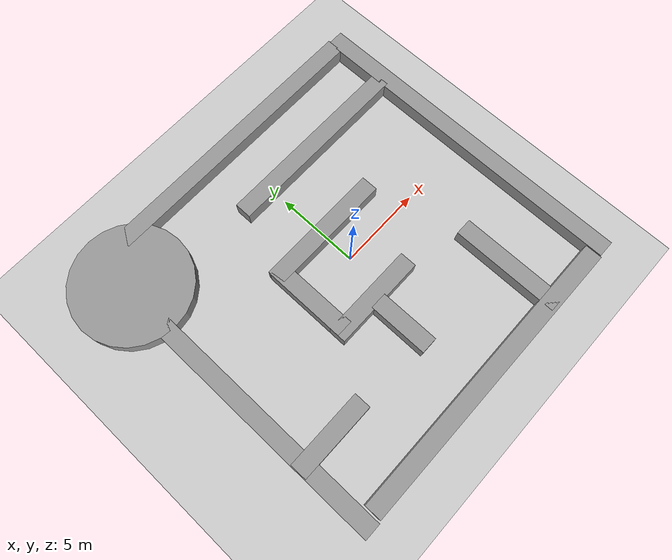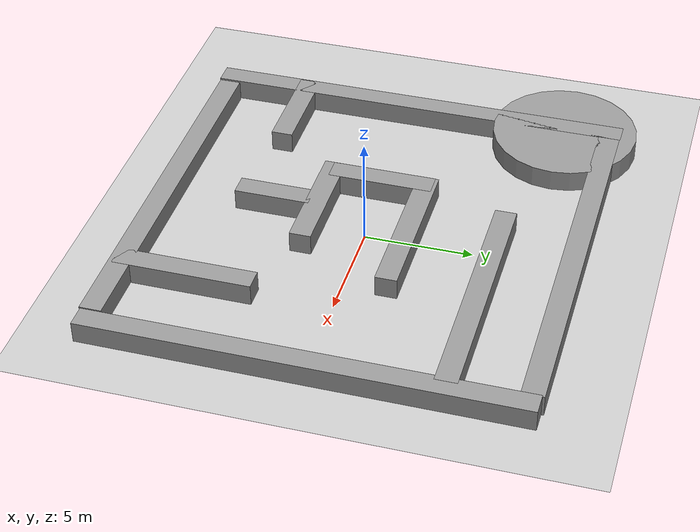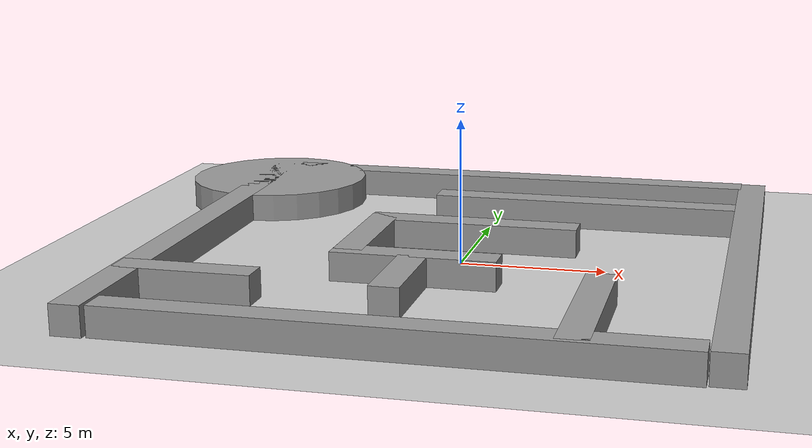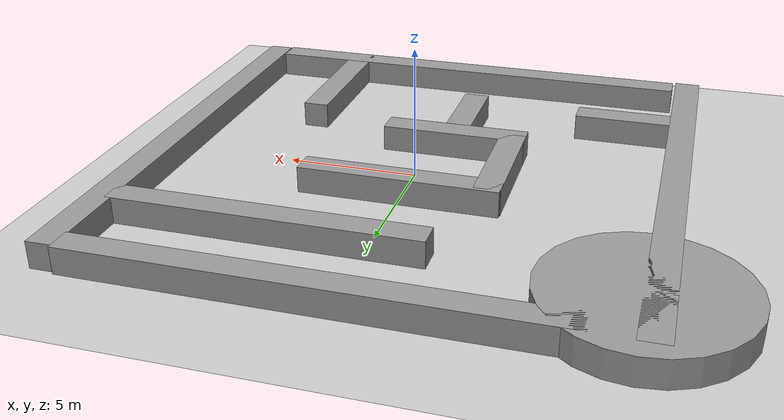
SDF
<sdf version="1.6">
 <world name="default">
  <light name="sun" type="directional">
   <pose>0 0 10 0 -0 0</pose>
   <diffuse>0.8 0.8 0.8 1</diffuse>
   <specular>0.1 0.1 0.1 1</specular>
   <attenuation>
    <range>1000</range>
    <constant>0.9</constant>
    <linear>0.01</linear>
    <quadratic>0.001</quadratic>
   </attenuation>
   <direction>-0.5 0.5 -1</direction>
  </light>
  <model name="ground_plane">
   <static>1</static>
   <link name="link">
    <collision name="collision">
     <geometry><plane><normal>0 0 1</normal><size>100 100</size></plane></geometry>
     <surface><friction><ode><mu>100</mu><mu2>50</mu2></ode></friction></surface>
    </collision>
    <visual name="visual">
     <cast_shadows>0</cast_shadows>
     <geometry><plane><normal>0 0 1</normal><size>100 100</size></plane></geometry>
     <material>
      <script><uri>file://media/materials/scripts/gazebo.material</uri><name>Gazebo/Grey</name></script>
     </material>
    </visual>
   </link>
  </model>
  <gravity>0 0 -9.8</gravity>
  <magnetic_field>6e-06 2.3e-05 -4.2e-05</magnetic_field>
  <atmosphere type="adiabatic"/>
  <physics name="default_physics" default="0" type="ode">
   <max_step_size>0.001</max_step_size>
   <real_time_factor>1</real_time_factor>
   <real_time_update_rate>1000</real_time_update_rate>
  </physics>
  <scene><ambient>0.4 0.4 0.4 1</ambient><background>0.7 0.7 0.7 1</background><shadows>1</shadows></scene>
  <spherical_coordinates>
   <surface_model>EARTH_WGS84</surface_model>
   <latitude_deg>0</latitude_deg>
   <longitude_deg>0</longitude_deg>
   <elevation>0</elevation>
   <heading_deg>0</heading_deg>
  </spherical_coordinates>
  <model name="mapa1">
   <link name="link_0">
    <pose>-8.44652 0.33221 0 0 -0 0</pose>
    <inertial>
     <mass>20.1095</mass>
     <inertia><ixx>679.354</ixx><ixy>0</ixy><ixz>0</ixz><iyy>3.35159</iyy><iyz>0</iyz><izz>679.354</izz></inertia>
    </inertial>
    <visual name="visual">
     <geometry><box><size>1 20.1095 1</size></box></geometry>
     <material>
      <lighting>1</lighting>
      <script><uri>file://media/materials/scripts/gazebo.material</uri><name>Gazebo/Grey</name></script>
      <ambient>0.3 0.3 0.3 1</ambient>
      <diffuse>0.7 0.7 0.7 1</diffuse>
      <specular>0.01 0.01 0.01 1</specular>
      <emissive>0 0 0 1</emissive>
     </material>
    </visual>
    <collision name="collision">
     <geometry><box><size>1 20.1095 1</size></box></geometry>
     <surface>
      <friction>
       <ode><mu>1</mu><mu2>1</mu2><fdir1>0 0 0</fdir1><slip1>0</slip1><slip2>0</slip2></ode>
       <torsional>
        <coefficient>1</coefficient>
        <patch_radius>0</patch_radius>
        <surface_radius>0</surface_radius>
        <use_patch_radius>1</use_patch_radius>
        <ode><slip>0</slip></ode>
       </torsional>
      </friction>
      <bounce><restitution_coefficient>0</restitution_coefficient><threshold>1e+06</threshold></bounce>
      <contact>
       <collide_without_contact>0</collide_without_contact>
       <collide_without_contact_bitmask>1</collide_without_contact_bitmask>
       <collide_bitmask>1</collide_bitmask>
       <ode>
        <soft_cfm>0</soft_cfm>
        <soft_erp>0.2</soft_erp>
        <kp>1e+13</kp>
        <kd>1</kd>
        <max_vel>0.01</max_vel>
        <min_depth>0</min_depth>
       </ode>
       <bullet>
        <split_impulse>1</split_impulse>
        <split_impulse_penetration_threshold>-0.01</split_impulse_penetration_threshold>
        <soft_cfm>0</soft_cfm>
        <soft_erp>0.2</soft_erp>
        <kp>1e+13</kp>
        <kd>1</kd>
       </bullet>
      </contact>
     </surface>
    </collision>
   </link>
   <link name="link_1">
    <pose>10.5982 0.33221 0 0 -0 0</pose>
    <inertial>
     <mass>19.8159</mass>
     <inertia><ixx>650.081</ixx><ixy>0</ixy><ixz>0</ixz><iyy>3.30266</iyy><iyz>0</iyz><izz>650.081</izz></inertia>
    </inertial>
    <visual name="visual">
     <geometry><box><size>1 19.8159 1</size></box></geometry>
     <material>
      <lighting>1</lighting>
      <script><uri>file://media/materials/scripts/gazebo.material</uri><name>Gazebo/Grey</name></script>
      <ambient>0.3 0.3 0.3 1</ambient>
      <diffuse>0.7 0.7 0.7 1</diffuse>
      <specular>0.01 0.01 0.01 1</specular>
      <emissive>0 0 0 1</emissive>
     </material>
    </visual>
    <collision name="collision">
     <geometry><box><size>1 19.8159 1</size></box></geometry>
     <surface>
      <friction>
       <ode><mu>1</mu><mu2>1</mu2><fdir1>0 0 0</fdir1><slip1>0</slip1><slip2>0</slip2></ode>
       <torsional>
        <coefficient>1</coefficient>
        <patch_radius>0</patch_radius>
        <surface_radius>0</surface_radius>
        <use_patch_radius>1</use_patch_radius>
        <ode><slip>0</slip></ode>
       </torsional>
      </friction>
      <bounce><restitution_coefficient>0</restitution_coefficient><threshold>1e+06</threshold></bounce>
      <contact>
       <collide_without_contact>0</collide_without_contact>
       <collide_without_contact_bitmask>1</collide_without_contact_bitmask>
       <collide_bitmask>1</collide_bitmask>
       <ode>
        <soft_cfm>0</soft_cfm>
        <soft_erp>0.2</soft_erp>
        <kp>1e+13</kp>
        <kd>1</kd>
        <max_vel>0.01</max_vel>
        <min_depth>0</min_depth>
       </ode>
       <bullet>
        <split_impulse>1</split_impulse>
        <split_impulse_penetration_threshold>-0.01</split_impulse_penetration_threshold>
        <soft_cfm>0</soft_cfm>
        <soft_erp>0.2</soft_erp>
        <kp>1e+13</kp>
        <kd>1</kd>
       </bullet>
      </contact>
     </surface>
    </collision>
   </link>
   <link name="link_10">
    <pose>6.39777 -6.29774 0 0 -0 0</pose>
    <inertial>
     <mass>6.36104</mass>
     <inertia><ixx>21.979</ixx><ixy>0</ixy><ixz>0</ixz><iyy>1.06018</iyy><iyz>0</iyz><izz>21.979</izz></inertia>
    </inertial>
    <visual name="visual">
     <geometry><box><size>1 6.36104 1</size></box></geometry>
     <material>
      <lighting>1</lighting>
      <script><uri>file://media/materials/scripts/gazebo.material</uri><name>Gazebo/Grey</name></script>
      <ambient>0.3 0.3 0.3 1</ambient>
      <diffuse>0.7 0.7 0.7 1</diffuse>
      <specular>0.01 0.01 0.01 1</specular>
      <emissive>0 0 0 1</emissive>
     </material>
    </visual>
    <collision name="collision">
     <geometry><box><size>1 6.36104 1</size></box></geometry>
     <surface>
      <friction>
       <ode><mu>1</mu><mu2>1</mu2><fdir1>0 0 0</fdir1><slip1>0</slip1><slip2>0</slip2></ode>
       <torsional>
        <coefficient>1</coefficient>
        <patch_radius>0</patch_radius>
        <surface_radius>0</surface_radius>
        <use_patch_radius>1</use_patch_radius>
        <ode><slip>0</slip></ode>
       </torsional>
      </friction>
      <bounce><restitution_coefficient>0</restitution_coefficient><threshold>1e+06</threshold></bounce>
      <contact>
       <collide_without_contact>0</collide_without_contact>
       <collide_without_contact_bitmask>1</collide_without_contact_bitmask>
       <collide_bitmask>1</collide_bitmask>
       <ode>
        <soft_cfm>0</soft_cfm>
        <soft_erp>0.2</soft_erp>
        <kp>1e+13</kp>
        <kd>1</kd>
        <max_vel>0.01</max_vel>
        <min_depth>0</min_depth>
       </ode>
       <bullet>
        <split_impulse>1</split_impulse>
        <split_impulse_penetration_threshold>-0.01</split_impulse_penetration_threshold>
        <soft_cfm>0</soft_cfm>
        <soft_erp>0.2</soft_erp>
        <kp>1e+13</kp>
        <kd>1</kd>
       </bullet>
      </contact>
     </surface>
    </collision>
   </link>
   <link name="link_11">
    <pose>-6.5653 -5.29878 0 0 -0 0</pose>
    <inertial>
     <mass>4.66575</mass>
     <inertia><ixx>0.777626</ixx><ixy>0</ixy><ixz>0</ixz><iyy>8.85295</iyy><iyz>0</iyz><izz>8.85295</izz></inertia>
    </inertial>
    <visual name="visual">
     <geometry><box><size>4.66574 1 1</size></box></geometry>
     <material>
      <lighting>1</lighting>
      <script><uri>file://media/materials/scripts/gazebo.material</uri><name>Gazebo/Grey</name></script>
      <ambient>0.3 0.3 0.3 1</ambient>
      <diffuse>0.7 0.7 0.7 1</diffuse>
      <specular>0.01 0.01 0.01 1</specular>
      <emissive>0 0 0 1</emissive>
     </material>
    </visual>
    <collision name="collision">
     <geometry><box><size>4.66574 1 1</size></box></geometry>
     <surface>
      <friction>
       <ode><mu>1</mu><mu2>1</mu2><fdir1>0 0 0</fdir1><slip1>0</slip1><slip2>0</slip2></ode>
       <torsional>
        <coefficient>1</coefficient>
        <patch_radius>0</patch_radius>
        <surface_radius>0</surface_radius>
        <use_patch_radius>1</use_patch_radius>
        <ode><slip>0</slip></ode>
       </torsional>
      </friction>
      <bounce><restitution_coefficient>0</restitution_coefficient><threshold>1e+06</threshold></bounce>
      <contact>
       <collide_without_contact>0</collide_without_contact>
       <collide_without_contact_bitmask>1</collide_without_contact_bitmask>
       <collide_bitmask>1</collide_bitmask>
       <ode>
        <soft_cfm>0</soft_cfm>
        <soft_erp>0.2</soft_erp>
        <kp>1e+13</kp>
        <kd>1</kd>
        <max_vel>0.01</max_vel>
        <min_depth>0</min_depth>
       </ode>
       <bullet>
        <split_impulse>1</split_impulse>
        <split_impulse_penetration_threshold>-0.01</split_impulse_penetration_threshold>
        <soft_cfm>0</soft_cfm>
        <soft_erp>0.2</soft_erp>
        <kp>1e+13</kp>
        <kd>1</kd>
       </bullet>
      </contact>
     </surface>
    </collision>
   </link>
   <link name="link_12">
    <pose>4.61857 6.33221 0 0 -0 0</pose>
    <inertial>
     <mass>11.441</mass>
     <inertia><ixx>1.90683</ixx><ixy>0</ixy><ixz>0</ixz><iyy>125.752</iyy><iyz>0</iyz><izz>125.752</izz></inertia>
    </inertial>
    <visual name="visual">
     <geometry><box><size>11.441 1 1</size></box></geometry>
     <material>
      <lighting>1</lighting>
      <script><uri>file://media/materials/scripts/gazebo.material</uri><name>Gazebo/Grey</name></script>
      <ambient>0.3 0.3 0.3 1</ambient>
      <diffuse>0.7 0.7 0.7 1</diffuse>
      <specular>0.01 0.01 0.01 1</specular>
      <emissive>0 0 0 1</emissive>
     </material>
    </visual>
    <collision name="collision">
     <geometry><box><size>11.441 1 1</size></box></geometry>
     <surface>
      <friction>
       <ode><mu>1</mu><mu2>1</mu2><fdir1>0 0 0</fdir1><slip1>0</slip1><slip2>0</slip2></ode>
       <torsional>
        <coefficient>1</coefficient>
        <patch_radius>0</patch_radius>
        <surface_radius>0</surface_radius>
        <use_patch_radius>1</use_patch_radius>
        <ode><slip>0</slip></ode>
       </torsional>
      </friction>
      <bounce><restitution_coefficient>0</restitution_coefficient><threshold>1e+06</threshold></bounce>
      <contact>
       <collide_without_contact>0</collide_without_contact>
       <collide_without_contact_bitmask>1</collide_without_contact_bitmask>
       <collide_bitmask>1</collide_bitmask>
       <ode>
        <soft_cfm>0</soft_cfm>
        <soft_erp>0.2</soft_erp>
        <kp>1e+13</kp>
        <kd>1</kd>
        <max_vel>0.01</max_vel>
        <min_depth>0</min_depth>
       </ode>
       <bullet>
        <split_impulse>1</split_impulse>
        <split_impulse_penetration_threshold>-0.01</split_impulse_penetration_threshold>
        <soft_cfm>0</soft_cfm>
        <soft_erp>0.2</soft_erp>
        <kp>1e+13</kp>
        <kd>1</kd>
       </bullet>
      </contact>
     </surface>
    </collision>
   </link>
   <link name="link_16">
    <pose>-8.04124 7.70684 0 0 -0 0</pose>
    <inertial>
     <mass>46.9712</mass>
     <inertia><ixx>141.808</ixx><ixy>0</ixy><ixz>0</ixz><iyy>141.808</iyy><iyz>0</iyz><izz>275.787</izz></inertia>
    </inertial>
    <visual name="visual">
     <geometry><cylinder><radius>3.42678</radius><length>1</length></cylinder></geometry>
     <material>
      <lighting>1</lighting>
      <script><uri>file://media/materials/scripts/gazebo.material</uri><name>Gazebo/Grey</name></script>
      <ambient>0.3 0.3 0.3 1</ambient>
      <diffuse>0.7 0.7 0.7 1</diffuse>
      <specular>0.01 0.01 0.01 1</specular>
      <emissive>0 0 0 1</emissive>
     </material>
    </visual>
    <collision name="collision">
     <geometry><cylinder><radius>3.42678</radius><length>1</length></cylinder></geometry>
     <surface>
      <friction>
       <ode><mu>1</mu><mu2>1</mu2><fdir1>0 0 0</fdir1><slip1>0</slip1><slip2>0</slip2></ode>
       <torsional>
        <coefficient>1</coefficient>
        <patch_radius>0</patch_radius>
        <surface_radius>0</surface_radius>
        <use_patch_radius>1</use_patch_radius>
        <ode><slip>0</slip></ode>
       </torsional>
      </friction>
      <bounce><restitution_coefficient>0</restitution_coefficient><threshold>1e+06</threshold></bounce>
      <contact>
       <collide_without_contact>0</collide_without_contact>
       <collide_without_contact_bitmask>1</collide_without_contact_bitmask>
       <collide_bitmask>1</collide_bitmask>
       <ode>
        <soft_cfm>0</soft_cfm>
        <soft_erp>0.2</soft_erp>
        <kp>1e+13</kp>
        <kd>1</kd>
        <max_vel>0.01</max_vel>
        <min_depth>0</min_depth>
       </ode>
       <bullet>
        <split_impulse>1</split_impulse>
        <split_impulse_penetration_threshold>-0.01</split_impulse_penetration_threshold>
        <soft_cfm>0</soft_cfm>
        <soft_erp>0.2</soft_erp>
        <kp>1e+13</kp>
        <kd>1</kd>
       </bullet>
      </contact>
     </surface>
    </collision>
   </link>
   <link name="link_2">
    <pose>1.1095 9.85385 0 0 -0 0</pose>
    <inertial>
     <mass>18.1505</mass>
     <inertia><ixx>3.02509</ixx><ixy>0</ixy><ixz>0</ixz><iyy>499.807</iyy><iyz>0</iyz><izz>499.807</izz></inertia>
    </inertial>
    <visual name="visual">
     <geometry><box><size>18.1505 1 1</size></box></geometry>
     <material>
      <lighting>1</lighting>
      <script><uri>file://media/materials/scripts/gazebo.material</uri><name>Gazebo/Grey</name></script>
      <ambient>0.3 0.3 0.3 1</ambient>
      <diffuse>0.7 0.7 0.7 1</diffuse>
      <specular>0.01 0.01 0.01 1</specular>
      <emissive>0 0 0 1</emissive>
     </material>
    </visual>
    <collision name="collision">
     <geometry><box><size>18.1505 1 1</size></box></geometry>
     <surface>
      <friction>
       <ode><mu>1</mu><mu2>1</mu2><fdir1>0 0 0</fdir1><slip1>0</slip1><slip2>0</slip2></ode>
       <torsional>
        <coefficient>1</coefficient>
        <patch_radius>0</patch_radius>
        <surface_radius>0</surface_radius>
        <use_patch_radius>1</use_patch_radius>
        <ode><slip>0</slip></ode>
       </torsional>
      </friction>
      <bounce><restitution_coefficient>0</restitution_coefficient><threshold>1e+06</threshold></bounce>
      <contact>
       <collide_without_contact>0</collide_without_contact>
       <collide_without_contact_bitmask>1</collide_without_contact_bitmask>
       <collide_bitmask>1</collide_bitmask>
       <ode>
        <soft_cfm>0</soft_cfm>
        <soft_erp>0.2</soft_erp>
        <kp>1e+13</kp>
        <kd>1</kd>
        <max_vel>0.01</max_vel>
        <min_depth>0</min_depth>
       </ode>
       <bullet>
        <split_impulse>1</split_impulse>
        <split_impulse_penetration_threshold>-0.01</split_impulse_penetration_threshold>
        <soft_cfm>0</soft_cfm>
        <soft_erp>0.2</soft_erp>
        <kp>1e+13</kp>
        <kd>1</kd>
       </bullet>
      </contact>
     </surface>
    </collision>
   </link>
   <link name="link_4">
    <pose>1.1095 -9.15869 0 0 -0 0</pose>
    <inertial>
     <mass>17.869</mass>
     <inertia><ixx>2.97818</ixx><ixy>0</ixy><ixz>0</ixz><iyy>476.959</iyy><iyz>0</iyz><izz>476.959</izz></inertia>
    </inertial>
    <visual name="visual">
     <geometry><box><size>17.869 1 1</size></box></geometry>
     <material>
      <lighting>1</lighting>
      <script><uri>file://media/materials/scripts/gazebo.material</uri><name>Gazebo/Grey</name></script>
      <ambient>0.3 0.3 0.3 1</ambient>
      <diffuse>0.7 0.7 0.7 1</diffuse>
      <specular>0.01 0.01 0.01 1</specular>
      <emissive>0 0 0 1</emissive>
     </material>
    </visual>
    <collision name="collision">
     <geometry><box><size>17.869 1 1</size></box></geometry>
     <surface>
      <friction>
       <ode><mu>1</mu><mu2>1</mu2><fdir1>0 0 0</fdir1><slip1>0</slip1><slip2>0</slip2></ode>
       <torsional>
        <coefficient>1</coefficient>
        <patch_radius>0</patch_radius>
        <surface_radius>0</surface_radius>
        <use_patch_radius>1</use_patch_radius>
        <ode><slip>0</slip></ode>
       </torsional>
      </friction>
      <bounce><restitution_coefficient>0</restitution_coefficient><threshold>1e+06</threshold></bounce>
      <contact>
       <collide_without_contact>0</collide_without_contact>
       <collide_without_contact_bitmask>1</collide_without_contact_bitmask>
       <collide_bitmask>1</collide_bitmask>
       <ode>
        <soft_cfm>0</soft_cfm>
        <soft_erp>0.2</soft_erp>
        <kp>1e+13</kp>
        <kd>1</kd>
        <max_vel>0.01</max_vel>
        <min_depth>0</min_depth>
       </ode>
       <bullet>
        <split_impulse>1</split_impulse>
        <split_impulse_penetration_threshold>-0.01</split_impulse_penetration_threshold>
        <soft_cfm>0</soft_cfm>
        <soft_erp>0.2</soft_erp>
        <kp>1e+13</kp>
        <kd>1</kd>
       </bullet>
      </contact>
     </surface>
    </collision>
   </link>
   <link name="link_6">
    <pose>1.1095 2.33221 0 0 -0 0</pose>
    <inertial>
     <mass>7.50259</mass>
     <inertia><ixx>1.25043</ixx><ixy>0</ixy><ixz>0</ixz><iyy>35.818</iyy><iyz>0</iyz><izz>35.818</izz></inertia>
    </inertial>
    <visual name="visual">
     <geometry><box><size>7.50259 1 1</size></box></geometry>
     <material>
      <lighting>1</lighting>
      <script><uri>file://media/materials/scripts/gazebo.material</uri><name>Gazebo/Grey</name></script>
      <ambient>0.3 0.3 0.3 1</ambient>
      <diffuse>0.7 0.7 0.7 1</diffuse>
      <specular>0.01 0.01 0.01 1</specular>
      <emissive>0 0 0 1</emissive>
     </material>
    </visual>
    <collision name="collision">
     <geometry><box><size>7.50259 1 1</size></box></geometry>
     <surface>
      <friction>
       <ode><mu>1</mu><mu2>1</mu2><fdir1>0 0 0</fdir1><slip1>0</slip1><slip2>0</slip2></ode>
       <torsional>
        <coefficient>1</coefficient>
        <patch_radius>0</patch_radius>
        <surface_radius>0</surface_radius>
        <use_patch_radius>1</use_patch_radius>
        <ode><slip>0</slip></ode>
       </torsional>
      </friction>
      <bounce><restitution_coefficient>0</restitution_coefficient><threshold>1e+06</threshold></bounce>
      <contact>
       <collide_without_contact>0</collide_without_contact>
       <collide_without_contact_bitmask>1</collide_without_contact_bitmask>
       <collide_bitmask>1</collide_bitmask>
       <ode>
        <soft_cfm>0</soft_cfm>
        <soft_erp>0.2</soft_erp>
        <kp>1e+13</kp>
        <kd>1</kd>
        <max_vel>0.01</max_vel>
        <min_depth>0</min_depth>
       </ode>
       <bullet>
        <split_impulse>1</split_impulse>
        <split_impulse_penetration_threshold>-0.01</split_impulse_penetration_threshold>
        <soft_cfm>0</soft_cfm>
        <soft_erp>0.2</soft_erp>
        <kp>1e+13</kp>
        <kd>1</kd>
       </bullet>
      </contact>
     </surface>
    </collision>
   </link>
   <link name="link_7">
    <pose>0.137046 -2.14385 0 0 -0 0</pose>
    <inertial>
     <mass>5.61093</mass>
     <inertia><ixx>0.935156</ixx><ixy>0</ixy><ixz>0</ixz><iyy>15.1881</iyy><iyz>0</iyz><izz>15.1881</izz></inertia>
    </inertial>
    <visual name="visual">
     <geometry><box><size>5.61093 1 1</size></box></geometry>
     <material>
      <lighting>1</lighting>
      <script><uri>file://media/materials/scripts/gazebo.material</uri><name>Gazebo/Grey</name></script>
      <ambient>0.3 0.3 0.3 1</ambient>
      <diffuse>0.7 0.7 0.7 1</diffuse>
      <specular>0.01 0.01 0.01 1</specular>
      <emissive>0 0 0 1</emissive>
     </material>
    </visual>
    <collision name="collision">
     <geometry><box><size>5.61093 1 1</size></box></geometry>
     <surface>
      <friction>
       <ode><mu>1</mu><mu2>1</mu2><fdir1>0 0 0</fdir1><slip1>0</slip1><slip2>0</slip2></ode>
       <torsional>
        <coefficient>1</coefficient>
        <patch_radius>0</patch_radius>
        <surface_radius>0</surface_radius>
        <use_patch_radius>1</use_patch_radius>
        <ode><slip>0</slip></ode>
       </torsional>
      </friction>
      <bounce><restitution_coefficient>0</restitution_coefficient><threshold>1e+06</threshold></bounce>
      <contact>
       <collide_without_contact>0</collide_without_contact>
       <collide_without_contact_bitmask>1</collide_without_contact_bitmask>
       <collide_bitmask>1</collide_bitmask>
       <ode>
        <soft_cfm>0</soft_cfm>
        <soft_erp>0.2</soft_erp>
        <kp>1e+13</kp>
        <kd>1</kd>
        <max_vel>0.01</max_vel>
        <min_depth>0</min_depth>
       </ode>
       <bullet>
        <split_impulse>1</split_impulse>
        <split_impulse_penetration_threshold>-0.01</split_impulse_penetration_threshold>
        <soft_cfm>0</soft_cfm>
        <soft_erp>0.2</soft_erp>
        <kp>1e+13</kp>
        <kd>1</kd>
       </bullet>
      </contact>
     </surface>
    </collision>
   </link>
   <link name="link_8">
    <pose>0.138267 -4.22979 0 0 -0 0</pose>
    <inertial>
     <mass>3.50842</mass>
     <inertia><ixx>3.89114</ixx><ixy>0</ixy><ixz>0</ixz><iyy>0.584738</iyy><iyz>0</iyz><izz>3.89114</izz></inertia>
    </inertial>
    <visual name="visual">
     <geometry><box><size>1 3.50842 1</size></box></geometry>
     <material>
      <lighting>1</lighting>
      <script><uri>file://media/materials/scripts/gazebo.material</uri><name>Gazebo/Grey</name></script>
      <ambient>0.3 0.3 0.3 1</ambient>
      <diffuse>0.7 0.7 0.7 1</diffuse>
      <specular>0.01 0.01 0.01 1</specular>
      <emissive>0 0 0 1</emissive>
     </material>
    </visual>
    <collision name="collision">
     <geometry><box><size>1 3.50842 1</size></box></geometry>
     <surface>
      <friction>
       <ode><mu>1</mu><mu2>1</mu2><fdir1>0 0 0</fdir1><slip1>0</slip1><slip2>0</slip2></ode>
       <torsional>
        <coefficient>1</coefficient>
        <patch_radius>0</patch_radius>
        <surface_radius>0</surface_radius>
        <use_patch_radius>1</use_patch_radius>
        <ode><slip>0</slip></ode>
       </torsional>
      </friction>
      <bounce><restitution_coefficient>0</restitution_coefficient><threshold>1e+06</threshold></bounce>
      <contact>
       <collide_without_contact>0</collide_without_contact>
       <collide_without_contact_bitmask>1</collide_without_contact_bitmask>
       <collide_bitmask>1</collide_bitmask>
       <ode>
        <soft_cfm>0</soft_cfm>
        <soft_erp>0.2</soft_erp>
        <kp>1e+13</kp>
        <kd>1</kd>
        <max_vel>0.01</max_vel>
        <min_depth>0</min_depth>
       </ode>
       <bullet>
        <split_impulse>1</split_impulse>
        <split_impulse_penetration_threshold>-0.01</split_impulse_penetration_threshold>
        <soft_cfm>0</soft_cfm>
        <soft_erp>0.2</soft_erp>
        <kp>1e+13</kp>
        <kd>1</kd>
       </bullet>
      </contact>
     </surface>
    </collision>
   </link>
   <link name="link_9">
    <pose>-2.16528 0.239329 0 0 -0 0</pose>
    <inertial>
     <mass>4.86833</mass>
     <inertia><ixx>10.0209</ixx><ixy>0</ixy><ixz>0</ixz><iyy>0.81139</iyy><iyz>0</iyz><izz>10.0209</izz></inertia>
    </inertial>
    <visual name="visual">
     <geometry><box><size>1 4.86833 1</size></box></geometry>
     <material>
      <lighting>1</lighting>
      <script><uri>file://media/materials/scripts/gazebo.material</uri><name>Gazebo/Grey</name></script>
      <ambient>0.3 0.3 0.3 1</ambient>
      <diffuse>0.7 0.7 0.7 1</diffuse>
      <specular>0.01 0.01 0.01 1</specular>
      <emissive>0 0 0 1</emissive>
     </material>
    </visual>
    <collision name="collision">
     <geometry><box><size>1 4.86833 1</size></box></geometry>
     <surface>
      <friction>
       <ode><mu>1</mu><mu2>1</mu2><fdir1>0 0 0</fdir1><slip1>0</slip1><slip2>0</slip2></ode>
       <torsional>
        <coefficient>1</coefficient>
        <patch_radius>0</patch_radius>
        <surface_radius>0</surface_radius>
        <use_patch_radius>1</use_patch_radius>
        <ode><slip>0</slip></ode>
       </torsional>
      </friction>
      <bounce><restitution_coefficient>0</restitution_coefficient><threshold>1e+06</threshold></bounce>
      <contact>
       <collide_without_contact>0</collide_without_contact>
       <collide_without_contact_bitmask>1</collide_without_contact_bitmask>
       <collide_bitmask>1</collide_bitmask>
       <ode>
        <soft_cfm>0</soft_cfm>
        <soft_erp>0.2</soft_erp>
        <kp>1e+13</kp>
        <kd>1</kd>
        <max_vel>0.01</max_vel>
        <min_depth>0</min_depth>
       </ode>
       <bullet>
        <split_impulse>1</split_impulse>
        <split_impulse_penetration_threshold>-0.01</split_impulse_penetration_threshold>
        <soft_cfm>0</soft_cfm>
        <soft_erp>0.2</soft_erp>
        <kp>1e+13</kp>
        <kd>1</kd>
       </bullet>
      </contact>
     </surface>
    </collision>
   </link>
   <static>0</static>
   <pose>-1.1095 -0.33221 0.5 0 -0 0</pose>
  </model>
 </world>
</sdf>
